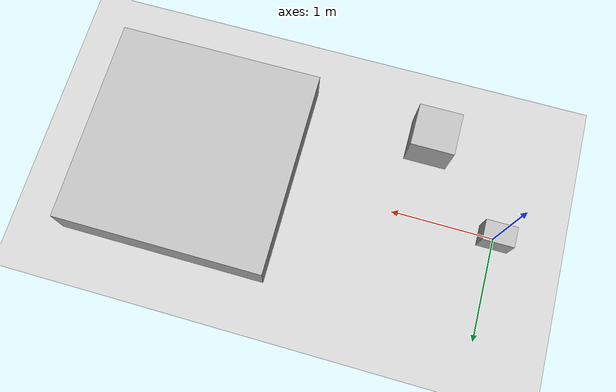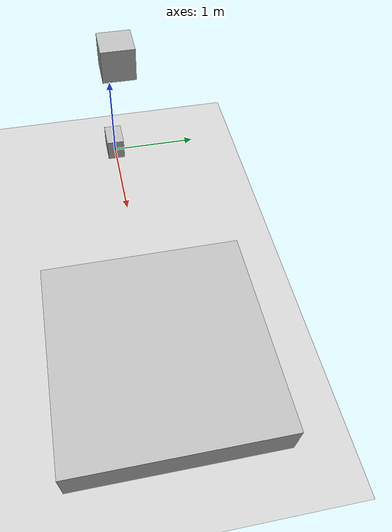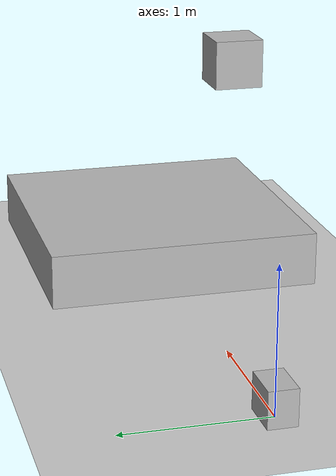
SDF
<?xml version="1.0"?>
<sdf version="1.7">
  <world name="basic_physics_world">
    <!-- Define gravity -->
    <gravity>0 0 -9.8</gravity>

    <!-- Physics engine configuration -->
    <physics name="ode_physics" type="ode">
      <max_step_size>0.001</max_step_size>
      <real_time_factor>1.0</real_time_factor>
      <real_time_update_rate>1000</real_time_update_rate>
      <ode>
        <solver>
          <type>quick</type>
          <iters>10</iters>
          <sor>1.3</sor>
        </solver>
        <constraints>
          <cfm>0.0</cfm>
          <erp>0.2</erp>
          <contact_max_correcting_vel>100.0</contact_max_correcting_vel>
          <contact_surface_layer>0.001</contact_surface_layer>
        </constraints>
      </ode>
    </physics>

    <!-- Include a ground plane -->
    <include>
      <uri>model://ground_plane</uri>
    </include>

    <!-- Include a sun for lighting -->
    <include>
      <uri>model://sun</uri>
    </include>

    <!-- Create a simple humanoid robot model -->
    <model name="simple_humanoid">
      <!-- Torso -->
      <link name="torso">
        <inertial>
          <mass>5.0</mass>
          <inertia>
            <ixx>0.1</ixx>
            <ixy>0.0</ixy>
            <ixz>0.0</ixz>
            <iyy>0.1</iyy>
            <iyz>0.0</iyz>
            <izz>0.1</izz>
          </inertia>
        </inertial>
        <collision name="torso_collision">
          <geometry>
            <box>
              <size>0.3 0.2 0.5</size>
            </box>
          </geometry>
        </collision>
        <visual name="torso_visual">
          <geometry>
            <box>
              <size>0.3 0.2 0.5</size>
            </box>
          </geometry>
        </visual>
      </link>

      <!-- Head -->
      <link name="head">
        <inertial>
          <mass>1.0</mass>
          <inertia>
            <ixx>0.01</ixx>
            <ixy>0.0</ixy>
            <ixz>0.0</ixz>
            <iyy>0.01</iyy>
            <iyz>0.0</iyz>
            <izz>0.01</izz>
          </inertia>
        </inertial>
        <collision name="head_collision">
          <geometry>
            <sphere>
              <radius>0.1</radius>
            </sphere>
          </geometry>
        </collision>
        <visual name="head_visual">
          <geometry>
            <sphere>
              <radius>0.1</radius>
            </sphere>
          </geometry>
        </visual>
      </link>

      <!-- Joint connecting torso and head -->
      <joint name="neck_joint" type="revolute">
        <parent>torso</parent>
        <child>head</child>
        <axis>
          <xyz>0 1 0</xyz>
          <limit>
            <lower>-0.5</lower>
            <upper>0.5</upper>
            <effort>10.0</effort>
            <velocity>1.0</velocity>
          </limit>
        </axis>
        <pose>0 0 0.3 0 0 0</pose>
      </joint>

      <!-- Left arm -->
      <link name="left_upper_arm">
        <inertial>
          <mass>0.8</mass>
          <inertia>
            <ixx>0.005</ixx>
            <ixy>0.0</ixy>
            <ixz>0.0</ixz>
            <iyy>0.005</iyy>
            <iyz>0.0</iyz>
            <izz>0.002</izz>
          </inertia>
        </inertial>
        <collision name="left_upper_arm_collision">
          <geometry>
            <cylinder>
              <radius>0.05</radius>
              <length>0.3</length>
            </cylinder>
          </geometry>
        </collision>
        <visual name="left_upper_arm_visual">
          <geometry>
            <cylinder>
              <radius>0.05</radius>
              <length>0.3</length>
            </cylinder>
          </geometry>
        </visual>
      </link>

      <joint name="left_shoulder_joint" type="revolute">
        <parent>torso</parent>
        <child>left_upper_arm</child>
        <axis>
          <xyz>0 1 0</xyz>
          <limit>
            <lower>-1.57</lower>
            <upper>1.57</upper>
            <effort>15.0</effort>
            <velocity>1.0</velocity>
          </limit>
        </axis>
        <pose>-0.2 0.1 0.1 0 0 0</pose>
      </joint>

      <!-- Right arm -->
      <link name="right_upper_arm">
        <inertial>
          <mass>0.8</mass>
          <inertia>
            <ixx>0.005</ixx>
            <ixy>0.0</ixy>
            <ixz>0.0</ixz>
            <iyy>0.005</iyy>
            <iyz>0.0</iyz>
            <izz>0.002</izz>
          </inertia>
        </inertial>
        <collision name="right_upper_arm_collision">
          <geometry>
            <cylinder>
              <radius>0.05</radius>
              <length>0.3</length>
            </cylinder>
          </geometry>
        </collision>
        <visual name="right_upper_arm_visual">
          <geometry>
            <cylinder>
              <radius>0.05</radius>
              <length>0.3</length>
            </cylinder>
          </geometry>
        </visual>
      </link>

      <joint name="right_shoulder_joint" type="revolute">
        <parent>torso</parent>
        <child>right_upper_arm</child>
        <axis>
          <xyz>0 1 0</xyz>
          <limit>
            <lower>-1.57</lower>
            <upper>1.57</upper>
            <effort>15.0</effort>
            <velocity>1.0</velocity>
          </limit>
        </axis>
        <pose>0.2 0.1 0.1 0 0 0</pose>
      </joint>

      <!-- Left leg -->
      <link name="left_upper_leg">
        <inertial>
          <mass>1.2</mass>
          <inertia>
            <ixx>0.01</ixx>
            <ixy>0.0</ixy>
            <ixz>0.0</ixz>
            <iyy>0.01</iyy>
            <iyz>0.0</iyz>
            <izz>0.003</izz>
          </inertia>
        </inertial>
        <collision name="left_upper_leg_collision">
          <geometry>
            <cylinder>
              <radius>0.06</radius>
              <length>0.4</length>
            </cylinder>
          </geometry>
        </collision>
        <visual name="left_upper_leg_visual">
          <geometry>
            <cylinder>
              <radius>0.06</radius>
              <length>0.4</length>
            </cylinder>
          </geometry>
        </visual>
      </link>

      <joint name="left_hip_joint" type="revolute">
        <parent>torso</parent>
        <child>left_upper_leg</child>
        <axis>
          <xyz>0 1 0</xyz>
          <limit>
            <lower>-1.0</lower>
            <upper>1.0</upper>
            <effort>20.0</effort>
            <velocity>1.0</velocity>
          </limit>
        </axis>
        <pose>-0.1 -0.1 -0.25 0 0 0</pose>
      </joint>

      <!-- Right leg -->
      <link name="right_upper_leg">
        <inertial>
          <mass>1.2</mass>
          <inertia>
            <ixx>0.01</ixx>
            <ixy>0.0</ixy>
            <ixz>0.0</ixz>
            <iyy>0.01</iyy>
            <iyz>0.0</iyz>
            <izz>0.003</izz>
          </inertia>
        </inertial>
        <collision name="right_upper_leg_collision">
          <geometry>
            <cylinder>
              <radius>0.06</radius>
              <length>0.4</length>
            </cylinder>
          </geometry>
        </collision>
        <visual name="right_upper_leg_visual">
          <geometry>
            <cylinder>
              <radius>0.06</radius>
              <length>0.4</length>
            </cylinder>
          </geometry>
        </visual>
      </link>

      <joint name="right_hip_joint" type="revolute">
        <parent>torso</parent>
        <child>right_upper_leg</child>
        <axis>
          <xyz>0 1 0</xyz>
          <limit>
            <lower>-1.0</lower>
            <upper>1.0</upper>
            <effort>20.0</effort>
            <velocity>1.0</velocity>
          </limit>
        </axis>
        <pose>0.1 -0.1 -0.25 0 0 0</pose>
      </joint>
    </model>

    <!-- Additional objects for environment interaction -->
    <model name="falling_box">
      <pose>1 0 2 0 0 0</pose>
      <link name="link">
        <inertial>
          <mass>1.0</mass>
          <inertia>
            <ixx>0.083</ixx>
            <ixy>0.0</ixy>
            <ixz>0.0</ixz>
            <iyy>0.083</iyy>
            <iyz>0.0</iyz>
            <izz>0.083</izz>
          </inertia>
        </inertial>
        <collision name="collision">
          <geometry>
            <box>
              <size>0.3 0.3 0.3</size>
            </box>
          </geometry>
        </collision>
        <visual name="visual">
          <geometry>
            <box>
              <size>0.3 0.3 0.3</size>
            </box>
          </geometry>
        </visual>
      </link>
    </model>

    <!-- Platform obstacle -->
    <model name="platform">
      <pose>3 0 0.2 0 0 0</pose>
      <link name="link">
        <inertial>
          <mass>10.0</mass>
          <inertia>
            <ixx>5.0</ixx>
            <ixy>0.0</ixy>
            <ixz>0.0</ixz>
            <iyy>5.0</iyy>
            <iyz>0.0</iyz>
            <izz>0.5</izz>
          </inertia>
        </inertial>
        <collision name="collision">
          <geometry>
            <box>
              <size>2 2 0.4</size>
            </box>
          </geometry>
        </collision>
        <visual name="visual">
          <geometry>
            <box>
              <size>2 2 0.4</size>
            </box>
          </geometry>
        </visual>
      </link>
    </model>
  </world>
</sdf>
